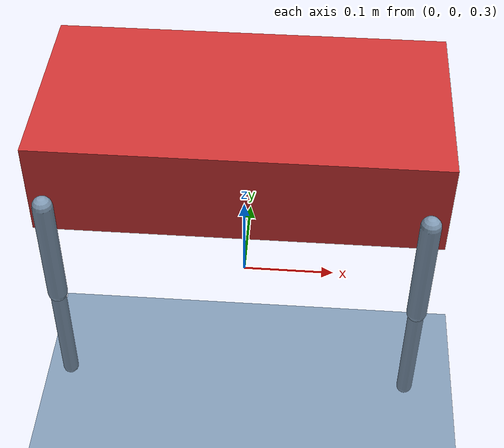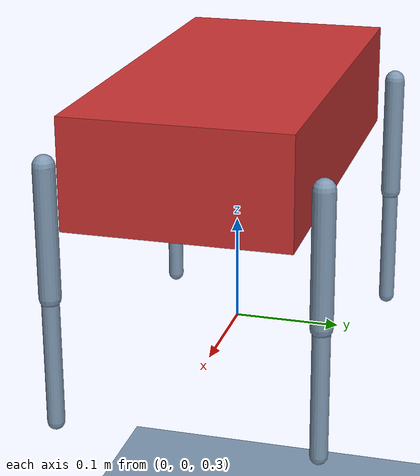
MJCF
<!-- Complete quadruped model -->
<mujoco model="yobotics">
    <compiler
        angle="degree"
        inertiafromgeom="true"
        coordinate="local"
        meshdir="../meshes/"
    />

    <option
        timestep="0.001"
        iterations="50"
        solver="Newton"
        tolerance="1e-10"
    />

    <size nstack="5000"/>

    <default>
        <joint limited="true" damping="0.1" armature="0.01"/>
        <motor ctrllimited="true" ctrlrange="-33.5 33.5"/>
        <geom contype="1" conaffinity="1" friction="1.0 0.1 0.1" rgba="0.5 0.6 0.7 1"/>
    </default>

    <worldbody>
        <light diffuse=".5 .5 .5" pos="0 0 3" dir="0 0 -1"/>
        <geom name="ground" type="plane" size="20 20 0.1" pos="0 0 0"/>

        <body name="trunk" pos="0 0 0.5">
            <joint type="free" limited="false"/>
            <geom type="box" size="0.2 0.1 0.05" rgba="0.8 0.2 0.2 1"/>

            <!-- Front right leg -->
            <body name="FR_hip" pos="0.18 -0.07 0">
                <joint name="FR_hip_joint" type="hinge" axis="0 0 1" range="-0.7 0.7"/>
                <geom type="cylinder" size="0.02 0.02" pos="0 0 0"/>

                <body name="FR_thigh" pos="0 -0.05 0">
                    <joint name="FR_thigh_joint" type="hinge" axis="1 0 0" range="-1.6 1.6"/>
                    <geom type="capsule" size="0.01" fromto="0 0 0 0 0 -0.12"/>

                    <body name="FR_calf" pos="0 0 -0.12">
                        <joint name="FR_calf_joint" type="hinge" axis="1 0 0" range="-2.4 -0.4"/>
                        <geom type="capsule" size="0.008" fromto="0 0 0 0 0 -0.12"/>
                    </body>
                </body>
            </body>

            <!-- Front left leg -->
            <body name="FL_hip" pos="0.18 0.07 0">
                <joint name="FL_hip_joint" type="hinge" axis="0 0 1" range="-0.7 0.7"/>
                <geom type="cylinder" size="0.02 0.02" pos="0 0 0"/>

                <body name="FL_thigh" pos="0 0.05 0">
                    <joint name="FL_thigh_joint" type="hinge" axis="1 0 0" range="-1.6 1.6"/>
                    <geom type="capsule" size="0.01" fromto="0 0 0 0 0 -0.12"/>

                    <body name="FL_calf" pos="0 0 -0.12">
                        <joint name="FL_calf_joint" type="hinge" axis="1 0 0" range="-2.4 -0.4"/>
                        <geom type="capsule" size="0.008" fromto="0 0 0 0 0 -0.12"/>
                    </body>
                </body>
            </body>

            <!-- Back right leg -->
            <body name="BR_hip" pos="-0.18 -0.07 0">
                <joint name="BR_hip_joint" type="hinge" axis="0 0 1" range="-0.7 0.7"/>
                <geom type="cylinder" size="0.02 0.02" pos="0 0 0"/>

                <body name="BR_thigh" pos="0 -0.05 0">
                    <joint name="BR_thigh_joint" type="hinge" axis="1 0 0" range="-1.6 1.6"/>
                    <geom type="capsule" size="0.01" fromto="0 0 0 0 0 -0.12"/>

                    <body name="BR_calf" pos="0 0 -0.12">
                        <joint name="BR_calf_joint" type="hinge" axis="1 0 0" range="-2.4 -0.4"/>
                        <geom type="capsule" size="0.008" fromto="0 0 0 0 0 -0.12"/>
                    </body>
                </body>
            </body>

            <!-- Back left leg -->
            <body name="BL_hip" pos="-0.18 0.07 0">
                <joint name="BL_hip_joint" type="hinge" axis="0 0 1" range="-0.7 0.7"/>
                <geom type="cylinder" size="0.02 0.02" pos="0 0 0"/>

                <body name="BL_thigh" pos="0 0.05 0">
                    <joint name="BL_thigh_joint" type="hinge" axis="1 0 0" range="-1.6 1.6"/>
                    <geom type="capsule" size="0.01" fromto="0 0 0 0 0 -0.12"/>

                    <body name="BL_calf" pos="0 0 -0.12">
                        <joint name="BL_calf_joint" type="hinge" axis="1 0 0" range="-2.4 -0.4"/>
                        <geom type="capsule" size="0.008" fromto="0 0 0 0 0 -0.12"/>
                    </body>
                </body>
            </body>
        </body>
    </worldbody>

    <actuator>
        <!-- Position actuators for each joint -->
        <position name="FR_hip_pos" joint="FR_hip_joint" kp="20" ctrlrange="-1.0 1.0"/>
        <position name="FR_thigh_pos" joint="FR_thigh_joint" kp="20" ctrlrange="-1.0 1.0"/>
        <position name="FR_calf_pos" joint="FR_calf_joint" kp="20" ctrlrange="-1.0 1.0"/>

        <position name="FL_hip_pos" joint="FL_hip_joint" kp="20" ctrlrange="-1.0 1.0"/>
        <position name="FL_thigh_pos" joint="FL_thigh_joint" kp="20" ctrlrange="-1.0 1.0"/>
        <position name="FL_calf_pos" joint="FL_calf_joint" kp="20" ctrlrange="-1.0 1.0"/>

        <position name="BR_hip_pos" joint="BR_hip_joint" kp="20" ctrlrange="-1.0 1.0"/>
        <position name="BR_thigh_pos" joint="BR_thigh_joint" kp="20" ctrlrange="-1.0 1.0"/>
        <position name="BR_calf_pos" joint="BR_calf_joint" kp="20" ctrlrange="-1.0 1.0"/>

        <position name="BL_hip_pos" joint="BL_hip_joint" kp="20" ctrlrange="-1.0 1.0"/>
        <position name="BL_thigh_pos" joint="BL_thigh_joint" kp="20" ctrlrange="-1.0 1.0"/>
        <position name="BL_calf_pos" joint="BL_calf_joint" kp="20" ctrlrange="-1.0 1.0"/>
    </actuator>
</mujoco>
